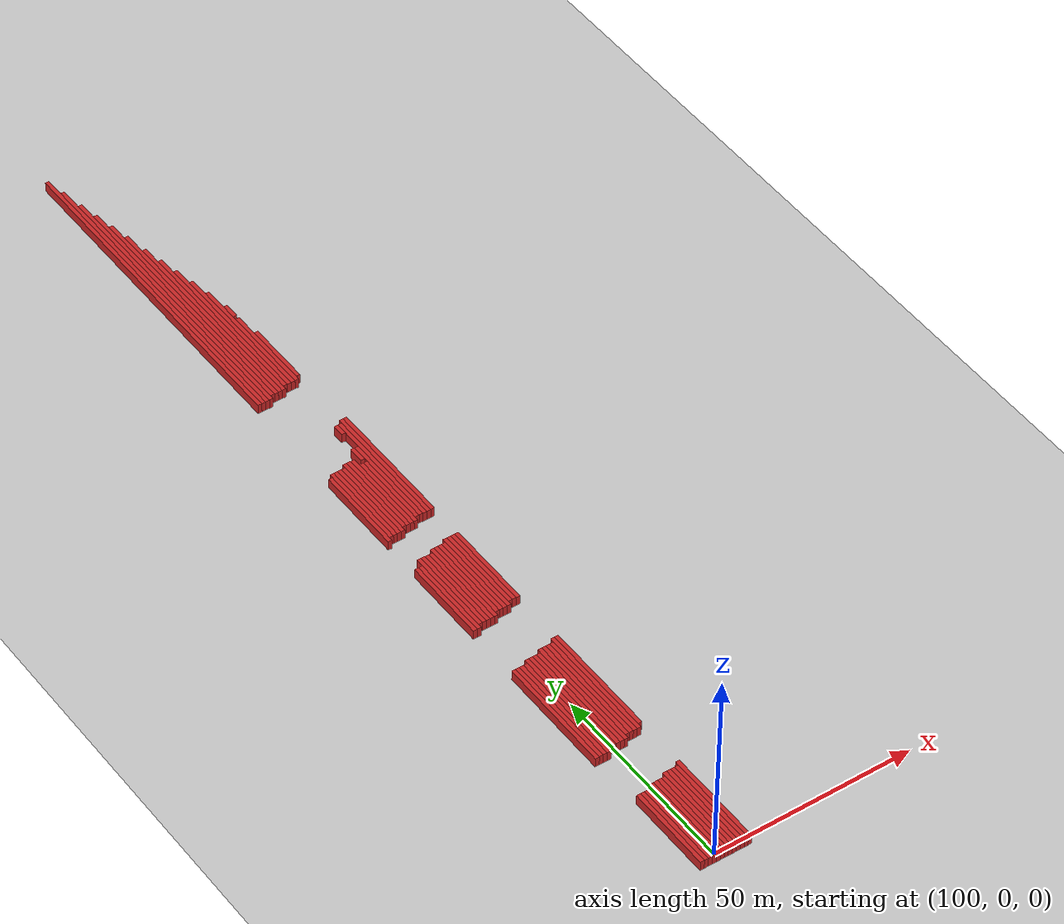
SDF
<sdf version="1.4">
 <world name="1_wall">
  <model name="ground_plane">
   <static>1</static>
   <link name="link">
    <collision name="collision">
     <geometry><plane><normal>0 0 1</normal><size>1000 1000</size></plane></geometry>
     <surface><friction><ode><mu>100</mu><mu2>50</mu2></ode></friction></surface>
    </collision>
    <visual name="visual">
     <cast_shadows>0</cast_shadows>
     <geometry><plane><normal>0 0 1</normal><size>10000 10000</size></plane></geometry>
     <material>
      <script><uri>file://media/materials/scripts/gazebo.material</uri><name>Gazebo/Grey</name></script>
     </material>
    </visual>
    <velocity_decay><linear>0</linear><angular>0</angular></velocity_decay>
   </link>
  </model>
  <model name="Wall_285">
   <static>1</static>
   <link name="Wall_285">
    <collision name="Wall_Collision_285">
     <geometry><box><size>30.0 1.0 2.5</size></box></geometry>
     <pose>0 0 1.25 0 -0 0</pose>
    </collision>
    <visual name="Wall_Visual_285">
     <pose>0 0 1.25 0 -0 0</pose>
     <geometry><box><size>30.0 1.0 2.5</size></box></geometry>
     <material>
      <script><uri>file://media/materials/scripts/gazebo.material</uri><name>Gazebo/Red</name></script>
     </material>
    </visual>
    <velocity_decay><linear>0</linear><angular>0</angular></velocity_decay>
    <pose>94.5 48.0 0 0 0 1.5707963267948966</pose>
   </link>
  </model>
  <model name="Wall_286">
   <static>1</static>
   <link name="Wall_286">
    <collision name="Wall_Collision_286">
     <geometry><box><size>22.0 1.0 2.5</size></box></geometry>
     <pose>0 0 1.25 0 -0 0</pose>
    </collision>
    <visual name="Wall_Visual_286">
     <pose>0 0 1.25 0 -0 0</pose>
     <geometry><box><size>22.0 1.0 2.5</size></box></geometry>
     <material>
      <script><uri>file://media/materials/scripts/gazebo.material</uri><name>Gazebo/Red</name></script>
     </material>
    </visual>
    <velocity_decay><linear>0</linear><angular>0</angular></velocity_decay>
    <pose>94.5 88.0 0 0 0 1.5707963267948966</pose>
   </link>
  </model>
  <model name="Wall_287">
   <static>1</static>
   <link name="Wall_287">
    <collision name="Wall_Collision_287">
     <geometry><box><size>23.0 1.0 2.5</size></box></geometry>
     <pose>0 0 1.25 0 -0 0</pose>
    </collision>
    <visual name="Wall_Visual_287">
     <pose>0 0 1.25 0 -0 0</pose>
     <geometry><box><size>23.0 1.0 2.5</size></box></geometry>
     <material>
      <script><uri>file://media/materials/scripts/gazebo.material</uri><name>Gazebo/Red</name></script>
     </material>
    </visual>
    <velocity_decay><linear>0</linear><angular>0</angular></velocity_decay>
    <pose>94.5 120.5 0 0 0 1.5707963267948966</pose>
   </link>
  </model>
  <model name="Wall_288">
   <static>1</static>
   <link name="Wall_288">
    <collision name="Wall_Collision_288">
     <geometry><box><size>89.0 1.0 2.5</size></box></geometry>
     <pose>0 0 1.25 0 -0 0</pose>
    </collision>
    <visual name="Wall_Visual_288">
     <pose>0 0 1.25 0 -0 0</pose>
     <geometry><box><size>89.0 1.0 2.5</size></box></geometry>
     <material>
      <script><uri>file://media/materials/scripts/gazebo.material</uri><name>Gazebo/Red</name></script>
     </material>
    </visual>
    <velocity_decay><linear>0</linear><angular>0</angular></velocity_decay>
    <pose>94.5 204.5 0 0 0 1.5707963267948966</pose>
   </link>
  </model>
  <model name="Wall_289">
   <static>1</static>
   <link name="Wall_289">
    <collision name="Wall_Collision_289">
     <geometry><box><size>22.0 1.0 2.5</size></box></geometry>
     <pose>0 0 1.25 0 -0 0</pose>
    </collision>
    <visual name="Wall_Visual_289">
     <pose>0 0 1.25 0 -0 0</pose>
     <geometry><box><size>22.0 1.0 2.5</size></box></geometry>
     <material>
      <script><uri>file://media/materials/scripts/gazebo.material</uri><name>Gazebo/Red</name></script>
     </material>
    </visual>
    <velocity_decay><linear>0</linear><angular>0</angular></velocity_decay>
    <pose>95.5 9.0 0 0 0 1.5707963267948966</pose>
   </link>
  </model>
  <model name="Wall_290">
   <static>1</static>
   <link name="Wall_290">
    <collision name="Wall_Collision_290">
     <geometry><box><size>30.0 1.0 2.5</size></box></geometry>
     <pose>0 0 1.25 0 -0 0</pose>
    </collision>
    <visual name="Wall_Visual_290">
     <pose>0 0 1.25 0 -0 0</pose>
     <geometry><box><size>30.0 1.0 2.5</size></box></geometry>
     <material>
      <script><uri>file://media/materials/scripts/gazebo.material</uri><name>Gazebo/Red</name></script>
     </material>
    </visual>
    <velocity_decay><linear>0</linear><angular>0</angular></velocity_decay>
    <pose>95.5 48.0 0 0 0 1.5707963267948966</pose>
   </link>
  </model>
  <model name="Wall_291">
   <static>1</static>
   <link name="Wall_291">
    <collision name="Wall_Collision_291">
     <geometry><box><size>22.0 1.0 2.5</size></box></geometry>
     <pose>0 0 1.25 0 -0 0</pose>
    </collision>
    <visual name="Wall_Visual_291">
     <pose>0 0 1.25 0 -0 0</pose>
     <geometry><box><size>22.0 1.0 2.5</size></box></geometry>
     <material>
      <script><uri>file://media/materials/scripts/gazebo.material</uri><name>Gazebo/Red</name></script>
     </material>
    </visual>
    <velocity_decay><linear>0</linear><angular>0</angular></velocity_decay>
    <pose>95.5 88.0 0 0 0 1.5707963267948966</pose>
   </link>
  </model>
  <model name="Wall_292">
   <static>1</static>
   <link name="Wall_292">
    <collision name="Wall_Collision_292">
     <geometry><box><size>23.0 1.0 2.5</size></box></geometry>
     <pose>0 0 1.25 0 -0 0</pose>
    </collision>
    <visual name="Wall_Visual_292">
     <pose>0 0 1.25 0 -0 0</pose>
     <geometry><box><size>23.0 1.0 2.5</size></box></geometry>
     <material>
      <script><uri>file://media/materials/scripts/gazebo.material</uri><name>Gazebo/Red</name></script>
     </material>
    </visual>
    <velocity_decay><linear>0</linear><angular>0</angular></velocity_decay>
    <pose>95.5 121.5 0 0 0 1.5707963267948966</pose>
   </link>
  </model>
  <model name="Wall_293">
   <static>1</static>
   <link name="Wall_293">
    <collision name="Wall_Collision_293">
     <geometry><box><size>84.0 1.0 2.5</size></box></geometry>
     <pose>0 0 1.25 0 -0 0</pose>
    </collision>
    <visual name="Wall_Visual_293">
     <pose>0 0 1.25 0 -0 0</pose>
     <geometry><box><size>84.0 1.0 2.5</size></box></geometry>
     <material>
      <script><uri>file://media/materials/scripts/gazebo.material</uri><name>Gazebo/Red</name></script>
     </material>
    </visual>
    <velocity_decay><linear>0</linear><angular>0</angular></velocity_decay>
    <pose>95.5 202.0 0 0 0 1.5707963267948966</pose>
   </link>
  </model>
  <model name="Wall_294">
   <static>1</static>
   <link name="Wall_294">
    <collision name="Wall_Collision_294">
     <geometry><box><size>22.0 1.0 2.5</size></box></geometry>
     <pose>0 0 1.25 0 -0 0</pose>
    </collision>
    <visual name="Wall_Visual_294">
     <pose>0 0 1.25 0 -0 0</pose>
     <geometry><box><size>22.0 1.0 2.5</size></box></geometry>
     <material>
      <script><uri>file://media/materials/scripts/gazebo.material</uri><name>Gazebo/Red</name></script>
     </material>
    </visual>
    <velocity_decay><linear>0</linear><angular>0</angular></velocity_decay>
    <pose>96.5 9.0 0 0 0 1.5707963267948966</pose>
   </link>
  </model>
  <model name="Wall_295">
   <static>1</static>
   <link name="Wall_295">
    <collision name="Wall_Collision_295">
     <geometry><box><size>30.0 1.0 2.5</size></box></geometry>
     <pose>0 0 1.25 0 -0 0</pose>
    </collision>
    <visual name="Wall_Visual_295">
     <pose>0 0 1.25 0 -0 0</pose>
     <geometry><box><size>30.0 1.0 2.5</size></box></geometry>
     <material>
      <script><uri>file://media/materials/scripts/gazebo.material</uri><name>Gazebo/Red</name></script>
     </material>
    </visual>
    <velocity_decay><linear>0</linear><angular>0</angular></velocity_decay>
    <pose>96.5 48.0 0 0 0 1.5707963267948966</pose>
   </link>
  </model>
  <model name="Wall_296">
   <static>1</static>
   <link name="Wall_296">
    <collision name="Wall_Collision_296">
     <geometry><box><size>23.0 1.0 2.5</size></box></geometry>
     <pose>0 0 1.25 0 -0 0</pose>
    </collision>
    <visual name="Wall_Visual_296">
     <pose>0 0 1.25 0 -0 0</pose>
     <geometry><box><size>23.0 1.0 2.5</size></box></geometry>
     <material>
      <script><uri>file://media/materials/scripts/gazebo.material</uri><name>Gazebo/Red</name></script>
     </material>
    </visual>
    <velocity_decay><linear>0</linear><angular>0</angular></velocity_decay>
    <pose>96.5 89.5 0 0 0 1.5707963267948966</pose>
   </link>
  </model>
  <model name="Wall_297">
   <static>1</static>
   <link name="Wall_297">
    <collision name="Wall_Collision_297">
     <geometry><box><size>23.0 1.0 2.5</size></box></geometry>
     <pose>0 0 1.25 0 -0 0</pose>
    </collision>
    <visual name="Wall_Visual_297">
     <pose>0 0 1.25 0 -0 0</pose>
     <geometry><box><size>23.0 1.0 2.5</size></box></geometry>
     <material>
      <script><uri>file://media/materials/scripts/gazebo.material</uri><name>Gazebo/Red</name></script>
     </material>
    </visual>
    <velocity_decay><linear>0</linear><angular>0</angular></velocity_decay>
    <pose>96.5 121.5 0 0 0 1.5707963267948966</pose>
   </link>
  </model>
  <model name="Wall_298">
   <static>1</static>
   <link name="Wall_298">
    <collision name="Wall_Collision_298">
     <geometry><box><size>78.0 1.0 2.5</size></box></geometry>
     <pose>0 0 1.25 0 -0 0</pose>
    </collision>
    <visual name="Wall_Visual_298">
     <pose>0 0 1.25 0 -0 0</pose>
     <geometry><box><size>78.0 1.0 2.5</size></box></geometry>
     <material>
      <script><uri>file://media/materials/scripts/gazebo.material</uri><name>Gazebo/Red</name></script>
     </material>
    </visual>
    <velocity_decay><linear>0</linear><angular>0</angular></velocity_decay>
    <pose>96.5 199.0 0 0 0 1.5707963267948966</pose>
   </link>
  </model>
  <model name="Wall_299">
   <static>1</static>
   <link name="Wall_299">
    <collision name="Wall_Collision_299">
     <geometry><box><size>22.0 1.0 2.5</size></box></geometry>
     <pose>0 0 1.25 0 -0 0</pose>
    </collision>
    <visual name="Wall_Visual_299">
     <pose>0 0 1.25 0 -0 0</pose>
     <geometry><box><size>22.0 1.0 2.5</size></box></geometry>
     <material>
      <script><uri>file://media/materials/scripts/gazebo.material</uri><name>Gazebo/Red</name></script>
     </material>
    </visual>
    <velocity_decay><linear>0</linear><angular>0</angular></velocity_decay>
    <pose>97.5 9.0 0 0 0 1.5707963267948966</pose>
   </link>
  </model>
  <model name="Wall_300">
   <static>1</static>
   <link name="Wall_300">
    <collision name="Wall_Collision_300">
     <geometry><box><size>30.0 1.0 2.5</size></box></geometry>
     <pose>0 0 1.25 0 -0 0</pose>
    </collision>
    <visual name="Wall_Visual_300">
     <pose>0 0 1.25 0 -0 0</pose>
     <geometry><box><size>30.0 1.0 2.5</size></box></geometry>
     <material>
      <script><uri>file://media/materials/scripts/gazebo.material</uri><name>Gazebo/Red</name></script>
     </material>
    </visual>
    <velocity_decay><linear>0</linear><angular>0</angular></velocity_decay>
    <pose>97.5 48.0 0 0 0 1.5707963267948966</pose>
   </link>
  </model>
  <model name="Wall_301">
   <static>1</static>
   <link name="Wall_301">
    <collision name="Wall_Collision_301">
     <geometry><box><size>23.0 1.0 2.5</size></box></geometry>
     <pose>0 0 1.25 0 -0 0</pose>
    </collision>
    <visual name="Wall_Visual_301">
     <pose>0 0 1.25 0 -0 0</pose>
     <geometry><box><size>23.0 1.0 2.5</size></box></geometry>
     <material>
      <script><uri>file://media/materials/scripts/gazebo.material</uri><name>Gazebo/Red</name></script>
     </material>
    </visual>
    <velocity_decay><linear>0</linear><angular>0</angular></velocity_decay>
    <pose>97.5 89.5 0 0 0 1.5707963267948966</pose>
   </link>
  </model>
  <model name="Wall_302">
   <static>1</static>
   <link name="Wall_302">
    <collision name="Wall_Collision_302">
     <geometry><box><size>23.0 1.0 2.5</size></box></geometry>
     <pose>0 0 1.25 0 -0 0</pose>
    </collision>
    <visual name="Wall_Visual_302">
     <pose>0 0 1.25 0 -0 0</pose>
     <geometry><box><size>23.0 1.0 2.5</size></box></geometry>
     <material>
      <script><uri>file://media/materials/scripts/gazebo.material</uri><name>Gazebo/Red</name></script>
     </material>
    </visual>
    <velocity_decay><linear>0</linear><angular>0</angular></velocity_decay>
    <pose>97.5 121.5 0 0 0 1.5707963267948966</pose>
   </link>
  </model>
  <model name="Wall_303">
   <static>1</static>
   <link name="Wall_303">
    <collision name="Wall_Collision_303">
     <geometry><box><size>73.0 1.0 2.5</size></box></geometry>
     <pose>0 0 1.25 0 -0 0</pose>
    </collision>
    <visual name="Wall_Visual_303">
     <pose>0 0 1.25 0 -0 0</pose>
     <geometry><box><size>73.0 1.0 2.5</size></box></geometry>
     <material>
      <script><uri>file://media/materials/scripts/gazebo.material</uri><name>Gazebo/Red</name></script>
     </material>
    </visual>
    <velocity_decay><linear>0</linear><angular>0</angular></velocity_decay>
    <pose>97.5 196.5 0 0 0 1.5707963267948966</pose>
   </link>
  </model>
  <model name="Wall_304">
   <static>1</static>
   <link name="Wall_304">
    <collision name="Wall_Collision_304">
     <geometry><box><size>22.0 1.0 2.5</size></box></geometry>
     <pose>0 0 1.25 0 -0 0</pose>
    </collision>
    <visual name="Wall_Visual_304">
     <pose>0 0 1.25 0 -0 0</pose>
     <geometry><box><size>22.0 1.0 2.5</size></box></geometry>
     <material>
      <script><uri>file://media/materials/scripts/gazebo.material</uri><name>Gazebo/Red</name></script>
     </material>
    </visual>
    <velocity_decay><linear>0</linear><angular>0</angular></velocity_decay>
    <pose>98.5 9.0 0 0 0 1.5707963267948966</pose>
   </link>
  </model>
  <model name="Wall_305">
   <static>1</static>
   <link name="Wall_305">
    <collision name="Wall_Collision_305">
     <geometry><box><size>30.0 1.0 2.5</size></box></geometry>
     <pose>0 0 1.25 0 -0 0</pose>
    </collision>
    <visual name="Wall_Visual_305">
     <pose>0 0 1.25 0 -0 0</pose>
     <geometry><box><size>30.0 1.0 2.5</size></box></geometry>
     <material>
      <script><uri>file://media/materials/scripts/gazebo.material</uri><name>Gazebo/Red</name></script>
     </material>
    </visual>
    <velocity_decay><linear>0</linear><angular>0</angular></velocity_decay>
    <pose>98.5 49.0 0 0 0 1.5707963267948966</pose>
   </link>
  </model>
  <model name="Wall_306">
   <static>1</static>
   <link name="Wall_306">
    <collision name="Wall_Collision_306">
     <geometry><box><size>23.0 1.0 2.5</size></box></geometry>
     <pose>0 0 1.25 0 -0 0</pose>
    </collision>
    <visual name="Wall_Visual_306">
     <pose>0 0 1.25 0 -0 0</pose>
     <geometry><box><size>23.0 1.0 2.5</size></box></geometry>
     <material>
      <script><uri>file://media/materials/scripts/gazebo.material</uri><name>Gazebo/Red</name></script>
     </material>
    </visual>
    <velocity_decay><linear>0</linear><angular>0</angular></velocity_decay>
    <pose>98.5 89.5 0 0 0 1.5707963267948966</pose>
   </link>
  </model>
  <model name="Wall_307">
   <static>1</static>
   <link name="Wall_307">
    <collision name="Wall_Collision_307">
     <geometry><box><size>23.0 1.0 2.5</size></box></geometry>
     <pose>0 0 1.25 0 -0 0</pose>
    </collision>
    <visual name="Wall_Visual_307">
     <pose>0 0 1.25 0 -0 0</pose>
     <geometry><box><size>23.0 1.0 2.5</size></box></geometry>
     <material>
      <script><uri>file://media/materials/scripts/gazebo.material</uri><name>Gazebo/Red</name></script>
     </material>
    </visual>
    <velocity_decay><linear>0</linear><angular>0</angular></velocity_decay>
    <pose>98.5 121.5 0 0 0 1.5707963267948966</pose>
   </link>
  </model>
  <model name="Wall_308">
   <static>1</static>
   <link name="Wall_308">
    <collision name="Wall_Collision_308">
     <geometry><box><size>67.0 1.0 2.5</size></box></geometry>
     <pose>0 0 1.25 0 -0 0</pose>
    </collision>
    <visual name="Wall_Visual_308">
     <pose>0 0 1.25 0 -0 0</pose>
     <geometry><box><size>67.0 1.0 2.5</size></box></geometry>
     <material>
      <script><uri>file://media/materials/scripts/gazebo.material</uri><name>Gazebo/Red</name></script>
     </material>
    </visual>
    <velocity_decay><linear>0</linear><angular>0</angular></velocity_decay>
    <pose>98.5 194.5 0 0 0 1.5707963267948966</pose>
   </link>
  </model>
  <model name="Wall_309">
   <static>1</static>
   <link name="Wall_309">
    <collision name="Wall_Collision_309">
     <geometry><box><size>23.0 1.0 2.5</size></box></geometry>
     <pose>0 0 1.25 0 -0 0</pose>
    </collision>
    <visual name="Wall_Visual_309">
     <pose>0 0 1.25 0 -0 0</pose>
     <geometry><box><size>23.0 1.0 2.5</size></box></geometry>
     <material>
      <script><uri>file://media/materials/scripts/gazebo.material</uri><name>Gazebo/Red</name></script>
     </material>
    </visual>
    <velocity_decay><linear>0</linear><angular>0</angular></velocity_decay>
    <pose>99.5 9.5 0 0 0 1.5707963267948966</pose>
   </link>
  </model>
  <model name="Wall_310">
   <static>1</static>
   <link name="Wall_310">
    <collision name="Wall_Collision_310">
     <geometry><box><size>30.0 1.0 2.5</size></box></geometry>
     <pose>0 0 1.25 0 -0 0</pose>
    </collision>
    <visual name="Wall_Visual_310">
     <pose>0 0 1.25 0 -0 0</pose>
     <geometry><box><size>30.0 1.0 2.5</size></box></geometry>
     <material>
      <script><uri>file://media/materials/scripts/gazebo.material</uri><name>Gazebo/Red</name></script>
     </material>
    </visual>
    <velocity_decay><linear>0</linear><angular>0</angular></velocity_decay>
    <pose>99.5 49.0 0 0 0 1.5707963267948966</pose>
   </link>
  </model>
  <model name="Wall_311">
   <static>1</static>
   <link name="Wall_311">
    <collision name="Wall_Collision_311">
     <geometry><box><size>23.0 1.0 2.5</size></box></geometry>
     <pose>0 0 1.25 0 -0 0</pose>
    </collision>
    <visual name="Wall_Visual_311">
     <pose>0 0 1.25 0 -0 0</pose>
     <geometry><box><size>23.0 1.0 2.5</size></box></geometry>
     <material>
      <script><uri>file://media/materials/scripts/gazebo.material</uri><name>Gazebo/Red</name></script>
     </material>
    </visual>
    <velocity_decay><linear>0</linear><angular>0</angular></velocity_decay>
    <pose>99.5 89.5 0 0 0 1.5707963267948966</pose>
   </link>
  </model>
  <model name="Wall_312">
   <static>1</static>
   <link name="Wall_312">
    <collision name="Wall_Collision_312">
     <geometry><box><size>23.0 1.0 2.5</size></box></geometry>
     <pose>0 0 1.25 0 -0 0</pose>
    </collision>
    <visual name="Wall_Visual_312">
     <pose>0 0 1.25 0 -0 0</pose>
     <geometry><box><size>23.0 1.0 2.5</size></box></geometry>
     <material>
      <script><uri>file://media/materials/scripts/gazebo.material</uri><name>Gazebo/Red</name></script>
     </material>
    </visual>
    <velocity_decay><linear>0</linear><angular>0</angular></velocity_decay>
    <pose>99.5 122.5 0 0 0 1.5707963267948966</pose>
   </link>
  </model>
  <model name="Wall_313">
   <static>1</static>
   <link name="Wall_313">
    <collision name="Wall_Collision_313">
     <geometry><box><size>62.0 1.0 2.5</size></box></geometry>
     <pose>0 0 1.25 0 -0 0</pose>
    </collision>
    <visual name="Wall_Visual_313">
     <pose>0 0 1.25 0 -0 0</pose>
     <geometry><box><size>62.0 1.0 2.5</size></box></geometry>
     <material>
      <script><uri>file://media/materials/scripts/gazebo.material</uri><name>Gazebo/Red</name></script>
     </material>
    </visual>
    <velocity_decay><linear>0</linear><angular>0</angular></velocity_decay>
    <pose>99.5 192.0 0 0 0 1.5707963267948966</pose>
   </link>
  </model>
  <model name="Wall_314">
   <static>1</static>
   <link name="Wall_314">
    <collision name="Wall_Collision_314">
     <geometry><box><size>23.0 1.0 2.5</size></box></geometry>
     <pose>0 0 1.25 0 -0 0</pose>
    </collision>
    <visual name="Wall_Visual_314">
     <pose>0 0 1.25 0 -0 0</pose>
     <geometry><box><size>23.0 1.0 2.5</size></box></geometry>
     <material>
      <script><uri>file://media/materials/scripts/gazebo.material</uri><name>Gazebo/Red</name></script>
     </material>
    </visual>
    <velocity_decay><linear>0</linear><angular>0</angular></velocity_decay>
    <pose>100.5 9.5 0 0 0 1.5707963267948966</pose>
   </link>
  </model>
  <model name="Wall_315">
   <static>1</static>
   <link name="Wall_315">
    <collision name="Wall_Collision_315">
     <geometry><box><size>30.0 1.0 2.5</size></box></geometry>
     <pose>0 0 1.25 0 -0 0</pose>
    </collision>
    <visual name="Wall_Visual_315">
     <pose>0 0 1.25 0 -0 0</pose>
     <geometry><box><size>30.0 1.0 2.5</size></box></geometry>
     <material>
      <script><uri>file://media/materials/scripts/gazebo.material</uri><name>Gazebo/Red</name></script>
     </material>
    </visual>
    <velocity_decay><linear>0</linear><angular>0</angular></velocity_decay>
    <pose>100.5 49.0 0 0 0 1.5707963267948966</pose>
   </link>
  </model>
  <model name="Wall_316">
   <static>1</static>
   <link name="Wall_316">
    <collision name="Wall_Collision_316">
     <geometry><box><size>24.0 1.0 2.5</size></box></geometry>
     <pose>0 0 1.25 0 -0 0</pose>
    </collision>
    <visual name="Wall_Visual_316">
     <pose>0 0 1.25 0 -0 0</pose>
     <geometry><box><size>24.0 1.0 2.5</size></box></geometry>
     <material>
      <script><uri>file://media/materials/scripts/gazebo.material</uri><name>Gazebo/Red</name></script>
     </material>
    </visual>
    <velocity_decay><linear>0</linear><angular>0</angular></velocity_decay>
    <pose>100.5 90.0 0 0 0 1.5707963267948966</pose>
   </link>
  </model>
  <model name="Wall_317">
   <static>1</static>
   <link name="Wall_317">
    <collision name="Wall_Collision_317">
     <geometry><box><size>23.0 1.0 2.5</size></box></geometry>
     <pose>0 0 1.25 0 -0 0</pose>
    </collision>
    <visual name="Wall_Visual_317">
     <pose>0 0 1.25 0 -0 0</pose>
     <geometry><box><size>23.0 1.0 2.5</size></box></geometry>
     <material>
      <script><uri>file://media/materials/scripts/gazebo.material</uri><name>Gazebo/Red</name></script>
     </material>
    </visual>
    <velocity_decay><linear>0</linear><angular>0</angular></velocity_decay>
    <pose>100.5 122.5 0 0 0 1.5707963267948966</pose>
   </link>
  </model>
  <model name="Wall_318">
   <static>1</static>
   <link name="Wall_318">
    <collision name="Wall_Collision_318">
     <geometry><box><size>56.0 1.0 2.5</size></box></geometry>
     <pose>0 0 1.25 0 -0 0</pose>
    </collision>
    <visual name="Wall_Visual_318">
     <pose>0 0 1.25 0 -0 0</pose>
     <geometry><box><size>56.0 1.0 2.5</size></box></geometry>
     <material>
      <script><uri>file://media/materials/scripts/gazebo.material</uri><name>Gazebo/Red</name></script>
     </material>
    </visual>
    <velocity_decay><linear>0</linear><angular>0</angular></velocity_decay>
    <pose>100.5 189.0 0 0 0 1.5707963267948966</pose>
   </link>
  </model>
  <model name="Wall_319">
   <static>1</static>
   <link name="Wall_319">
    <collision name="Wall_Collision_319">
     <geometry><box><size>23.0 1.0 2.5</size></box></geometry>
     <pose>0 0 1.25 0 -0 0</pose>
    </collision>
    <visual name="Wall_Visual_319">
     <pose>0 0 1.25 0 -0 0</pose>
     <geometry><box><size>23.0 1.0 2.5</size></box></geometry>
     <material>
      <script><uri>file://media/materials/scripts/gazebo.material</uri><name>Gazebo/Red</name></script>
     </material>
    </visual>
    <velocity_decay><linear>0</linear><angular>0</angular></velocity_decay>
    <pose>101.5 9.5 0 0 0 1.5707963267948966</pose>
   </link>
  </model>
  <model name="Wall_320">
   <static>1</static>
   <link name="Wall_320">
    <collision name="Wall_Collision_320">
     <geometry><box><size>30.0 1.0 2.5</size></box></geometry>
     <pose>0 0 1.25 0 -0 0</pose>
    </collision>
    <visual name="Wall_Visual_320">
     <pose>0 0 1.25 0 -0 0</pose>
     <geometry><box><size>30.0 1.0 2.5</size></box></geometry>
     <material>
      <script><uri>file://media/materials/scripts/gazebo.material</uri><name>Gazebo/Red</name></script>
     </material>
    </visual>
    <velocity_decay><linear>0</linear><angular>0</angular></velocity_decay>
    <pose>101.5 49.0 0 0 0 1.5707963267948966</pose>
   </link>
  </model>
  <model name="Wall_321">
   <static>1</static>
   <link name="Wall_321">
    <collision name="Wall_Collision_321">
     <geometry><box><size>23.0 1.0 2.5</size></box></geometry>
     <pose>0 0 1.25 0 -0 0</pose>
    </collision>
    <visual name="Wall_Visual_321">
     <pose>0 0 1.25 0 -0 0</pose>
     <geometry><box><size>23.0 1.0 2.5</size></box></geometry>
     <material>
      <script><uri>file://media/materials/scripts/gazebo.material</uri><name>Gazebo/Red</name></script>
     </material>
    </visual>
    <velocity_decay><linear>0</linear><angular>0</angular></velocity_decay>
    <pose>101.5 90.5 0 0 0 1.5707963267948966</pose>
   </link>
  </model>
  <model name="Wall_322">
   <static>1</static>
   <link name="Wall_322">
    <collision name="Wall_Collision_322">
     <geometry><box><size>23.0 1.0 2.5</size></box></geometry>
     <pose>0 0 1.25 0 -0 0</pose>
    </collision>
    <visual name="Wall_Visual_322">
     <pose>0 0 1.25 0 -0 0</pose>
     <geometry><box><size>23.0 1.0 2.5</size></box></geometry>
     <material>
      <script><uri>file://media/materials/scripts/gazebo.material</uri><name>Gazebo/Red</name></script>
     </material>
    </visual>
    <velocity_decay><linear>0</linear><angular>0</angular></velocity_decay>
    <pose>101.5 122.5 0 0 0 1.5707963267948966</pose>
   </link>
  </model>
  <model name="Wall_323">
   <static>1</static>
   <link name="Wall_323">
    <collision name="Wall_Collision_323">
     <geometry><box><size>51.0 1.0 2.5</size></box></geometry>
     <pose>0 0 1.25 0 -0 0</pose>
    </collision>
    <visual name="Wall_Visual_323">
     <pose>0 0 1.25 0 -0 0</pose>
     <geometry><box><size>51.0 1.0 2.5</size></box></geometry>
     <material>
      <script><uri>file://media/materials/scripts/gazebo.material</uri><name>Gazebo/Red</name></script>
     </material>
    </visual>
    <velocity_decay><linear>0</linear><angular>0</angular></velocity_decay>
    <pose>101.5 186.5 0 0 0 1.5707963267948966</pose>
   </link>
  </model>
  <model name="Wall_324">
   <static>1</static>
   <link name="Wall_324">
    <collision name="Wall_Collision_324">
     <geometry><box><size>23.0 1.0 2.5</size></box></geometry>
     <pose>0 0 1.25 0 -0 0</pose>
    </collision>
    <visual name="Wall_Visual_324">
     <pose>0 0 1.25 0 -0 0</pose>
     <geometry><box><size>23.0 1.0 2.5</size></box></geometry>
     <material>
      <script><uri>file://media/materials/scripts/gazebo.material</uri><name>Gazebo/Red</name></script>
     </material>
    </visual>
    <velocity_decay><linear>0</linear><angular>0</angular></velocity_decay>
    <pose>102.5 9.5 0 0 0 1.5707963267948966</pose>
   </link>
  </model>
  <model name="Wall_325">
   <static>1</static>
   <link name="Wall_325">
    <collision name="Wall_Collision_325">
     <geometry><box><size>31.0 1.0 2.5</size></box></geometry>
     <pose>0 0 1.25 0 -0 0</pose>
    </collision>
    <visual name="Wall_Visual_325">
     <pose>0 0 1.25 0 -0 0</pose>
     <geometry><box><size>31.0 1.0 2.5</size></box></geometry>
     <material>
      <script><uri>file://media/materials/scripts/gazebo.material</uri><name>Gazebo/Red</name></script>
     </material>
    </visual>
    <velocity_decay><linear>0</linear><angular>0</angular></velocity_decay>
    <pose>102.5 49.5 0 0 0 1.5707963267948966</pose>
   </link>
  </model>
  <model name="Wall_326">
   <static>1</static>
   <link name="Wall_326">
    <collision name="Wall_Collision_326">
     <geometry><box><size>23.0 1.0 2.5</size></box></geometry>
     <pose>0 0 1.25 0 -0 0</pose>
    </collision>
    <visual name="Wall_Visual_326">
     <pose>0 0 1.25 0 -0 0</pose>
     <geometry><box><size>23.0 1.0 2.5</size></box></geometry>
     <material>
      <script><uri>file://media/materials/scripts/gazebo.material</uri><name>Gazebo/Red</name></script>
     </material>
    </visual>
    <velocity_decay><linear>0</linear><angular>0</angular></velocity_decay>
    <pose>102.5 90.5 0 0 0 1.5707963267948966</pose>
   </link>
  </model>
  <model name="Wall_327">
   <static>1</static>
   <link name="Wall_327">
    <collision name="Wall_Collision_327">
     <geometry><box><size>21.0 1.0 2.5</size></box></geometry>
     <pose>0 0 1.25 0 -0 0</pose>
    </collision>
    <visual name="Wall_Visual_327">
     <pose>0 0 1.25 0 -0 0</pose>
     <geometry><box><size>21.0 1.0 2.5</size></box></geometry>
     <material>
      <script><uri>file://media/materials/scripts/gazebo.material</uri><name>Gazebo/Red</name></script>
     </material>
    </visual>
    <velocity_decay><linear>0</linear><angular>0</angular></velocity_decay>
    <pose>102.5 121.5 0 0 0 1.5707963267948966</pose>
   </link>
  </model>
  <model name="Wall_328">
   <static>1</static>
   <link name="Wall_328">
    <collision name="Wall_Collision_328">
     <geometry><box><size>45.0 1.0 2.5</size></box></geometry>
     <pose>0 0 1.25 0 -0 0</pose>
    </collision>
    <visual name="Wall_Visual_328">
     <pose>0 0 1.25 0 -0 0</pose>
     <geometry><box><size>45.0 1.0 2.5</size></box></geometry>
     <material>
      <script><uri>file://media/materials/scripts/gazebo.material</uri><name>Gazebo/Red</name></script>
     </material>
    </visual>
    <velocity_decay><linear>0</linear><angular>0</angular></velocity_decay>
    <pose>102.5 184.5 0 0 0 1.5707963267948966</pose>
   </link>
  </model>
  <model name="Wall_329">
   <static>1</static>
   <link name="Wall_329">
    <collision name="Wall_Collision_329">
     <geometry><box><size>24.0 1.0 2.5</size></box></geometry>
     <pose>0 0 1.25 0 -0 0</pose>
    </collision>
    <visual name="Wall_Visual_329">
     <pose>0 0 1.25 0 -0 0</pose>
     <geometry><box><size>24.0 1.0 2.5</size></box></geometry>
     <material>
      <script><uri>file://media/materials/scripts/gazebo.material</uri><name>Gazebo/Red</name></script>
     </material>
    </visual>
    <velocity_decay><linear>0</linear><angular>0</angular></velocity_decay>
    <pose>103.5 10.0 0 0 0 1.5707963267948966</pose>
   </link>
  </model>
  <model name="Wall_330">
   <static>1</static>
   <link name="Wall_330">
    <collision name="Wall_Collision_330">
     <geometry><box><size>30.0 1.0 2.5</size></box></geometry>
     <pose>0 0 1.25 0 -0 0</pose>
    </collision>
    <visual name="Wall_Visual_330">
     <pose>0 0 1.25 0 -0 0</pose>
     <geometry><box><size>30.0 1.0 2.5</size></box></geometry>
     <material>
      <script><uri>file://media/materials/scripts/gazebo.material</uri><name>Gazebo/Red</name></script>
     </material>
    </visual>
    <velocity_decay><linear>0</linear><angular>0</angular></velocity_decay>
    <pose>103.5 50.0 0 0 0 1.5707963267948966</pose>
   </link>
  </model>
  <model name="Wall_331">
   <static>1</static>
   <link name="Wall_331">
    <collision name="Wall_Collision_331">
     <geometry><box><size>23.0 1.0 2.5</size></box></geometry>
     <pose>0 0 1.25 0 -0 0</pose>
    </collision>
    <visual name="Wall_Visual_331">
     <pose>0 0 1.25 0 -0 0</pose>
     <geometry><box><size>23.0 1.0 2.5</size></box></geometry>
     <material>
      <script><uri>file://media/materials/scripts/gazebo.material</uri><name>Gazebo/Red</name></script>
     </material>
    </visual>
    <velocity_decay><linear>0</linear><angular>0</angular></velocity_decay>
    <pose>103.5 90.5 0 0 0 1.5707963267948966</pose>
   </link>
  </model>
  <model name="Wall_332">
   <static>1</static>
   <link name="Wall_332">
    <collision name="Wall_Collision_332">
     <geometry><box><size>20.0 1.0 2.5</size></box></geometry>
     <pose>0 0 1.25 0 -0 0</pose>
    </collision>
    <visual name="Wall_Visual_332">
     <pose>0 0 1.25 0 -0 0</pose>
     <geometry><box><size>20.0 1.0 2.5</size></box></geometry>
     <material>
      <script><uri>file://media/materials/scripts/gazebo.material</uri><name>Gazebo/Red</name></script>
     </material>
    </visual>
    <velocity_decay><linear>0</linear><angular>0</angular></velocity_decay>
    <pose>103.5 122.0 0 0 0 1.5707963267948966</pose>
   </link>
  </model>
  <model name="Wall_333">
   <static>1</static>
   <link name="Wall_333">
    <collision name="Wall_Collision_333">
     <geometry><box><size>4.0 1.0 2.5</size></box></geometry>
     <pose>0 0 1.25 0 -0 0</pose>
    </collision>
    <visual name="Wall_Visual_333">
     <pose>0 0 1.25 0 -0 0</pose>
     <geometry><box><size>4.0 1.0 2.5</size></box></geometry>
     <material>
      <script><uri>file://media/materials/scripts/gazebo.material</uri><name>Gazebo/Red</name></script>
     </material>
    </visual>
    <velocity_decay><linear>0</linear><angular>0</angular></velocity_decay>
    <pose>103.5 135.0 0 0 0 1.5707963267948966</pose>
   </link>
  </model>
  <model name="Wall_334">
   <static>1</static>
   <link name="Wall_334">
    <collision name="Wall_Collision_334">
     <geometry><box><size>40.0 1.0 2.5</size></box></geometry>
     <pose>0 0 1.25 0 -0 0</pose>
    </collision>
    <visual name="Wall_Visual_334">
     <pose>0 0 1.25 0 -0 0</pose>
     <geometry><box><size>40.0 1.0 2.5</size></box></geometry>
     <material>
      <script><uri>file://media/materials/scripts/gazebo.material</uri><name>Gazebo/Red</name></script>
     </material>
    </visual>
    <velocity_decay><linear>0</linear><angular>0</angular></velocity_decay>
    <pose>103.5 182.0 0 0 0 1.5707963267948966</pose>
   </link>
  </model>
  <model name="Wall_335">
   <static>1</static>
   <link name="Wall_335">
    <collision name="Wall_Collision_335">
     <geometry><box><size>24.0 1.0 2.5</size></box></geometry>
     <pose>0 0 1.25 0 -0 0</pose>
    </collision>
    <visual name="Wall_Visual_335">
     <pose>0 0 1.25 0 -0 0</pose>
     <geometry><box><size>24.0 1.0 2.5</size></box></geometry>
     <material>
      <script><uri>file://media/materials/scripts/gazebo.material</uri><name>Gazebo/Red</name></script>
     </material>
    </visual>
    <velocity_decay><linear>0</linear><angular>0</angular></velocity_decay>
    <pose>104.5 10.0 0 0 0 1.5707963267948966</pose>
   </link>
  </model>
  <model name="Wall_336">
   <static>1</static>
   <link name="Wall_336">
    <collision name="Wall_Collision_336">
     <geometry><box><size>30.0 1.0 2.5</size></box></geometry>
     <pose>0 0 1.25 0 -0 0</pose>
    </collision>
    <visual name="Wall_Visual_336">
     <pose>0 0 1.25 0 -0 0</pose>
     <geometry><box><size>30.0 1.0 2.5</size></box></geometry>
     <material>
      <script><uri>file://media/materials/scripts/gazebo.material</uri><name>Gazebo/Red</name></script>
     </material>
    </visual>
    <velocity_decay><linear>0</linear><angular>0</angular></velocity_decay>
    <pose>104.5 50.0 0 0 0 1.5707963267948966</pose>
   </link>
  </model>
  <model name="Wall_337">
   <static>1</static>
   <link name="Wall_337">
    <collision name="Wall_Collision_337">
     <geometry><box><size>24.0 1.0 2.5</size></box></geometry>
     <pose>0 0 1.25 0 -0 0</pose>
    </collision>
    <visual name="Wall_Visual_337">
     <pose>0 0 1.25 0 -0 0</pose>
     <geometry><box><size>24.0 1.0 2.5</size></box></geometry>
     <material>
      <script><uri>file://media/materials/scripts/gazebo.material</uri><name>Gazebo/Red</name></script>
     </material>
    </visual>
    <velocity_decay><linear>0</linear><angular>0</angular></velocity_decay>
    <pose>104.5 91.0 0 0 0 1.5707963267948966</pose>
   </link>
  </model>
  <model name="Wall_338">
   <static>1</static>
   <link name="Wall_338">
    <collision name="Wall_Collision_338">
     <geometry><box><size>25.0 1.0 2.5</size></box></geometry>
     <pose>0 0 1.25 0 -0 0</pose>
    </collision>
    <visual name="Wall_Visual_338">
     <pose>0 0 1.25 0 -0 0</pose>
     <geometry><box><size>25.0 1.0 2.5</size></box></geometry>
     <material>
      <script><uri>file://media/materials/scripts/gazebo.material</uri><name>Gazebo/Red</name></script>
     </material>
    </visual>
    <velocity_decay><linear>0</linear><angular>0</angular></velocity_decay>
    <pose>104.5 124.5 0 0 0 1.5707963267948966</pose>
   </link>
  </model>
  <model name="Wall_339">
   <static>1</static>
   <link name="Wall_339">
    <collision name="Wall_Collision_339">
     <geometry><box><size>3.0 1.0 2.5</size></box></geometry>
     <pose>0 0 1.25 0 -0 0</pose>
    </collision>
    <visual name="Wall_Visual_339">
     <pose>0 0 1.25 0 -0 0</pose>
     <geometry><box><size>3.0 1.0 2.5</size></box></geometry>
     <material>
      <script><uri>file://media/materials/scripts/gazebo.material</uri><name>Gazebo/Red</name></script>
     </material>
    </visual>
    <velocity_decay><linear>0</linear><angular>0</angular></velocity_decay>
    <pose>104.5 143.5 0 0 0 1.5707963267948966</pose>
   </link>
  </model>
  <model name="Wall_340">
   <static>1</static>
   <link name="Wall_340">
    <collision name="Wall_Collision_340">
     <geometry><box><size>35.0 1.0 2.5</size></box></geometry>
     <pose>0 0 1.25 0 -0 0</pose>
    </collision>
    <visual name="Wall_Visual_340">
     <pose>0 0 1.25 0 -0 0</pose>
     <geometry><box><size>35.0 1.0 2.5</size></box></geometry>
     <material>
      <script><uri>file://media/materials/scripts/gazebo.material</uri><name>Gazebo/Red</name></script>
     </material>
    </visual>
    <velocity_decay><linear>0</linear><angular>0</angular></velocity_decay>
    <pose>104.5 179.5 0 0 0 1.5707963267948966</pose>
   </link>
  </model>
  <model name="Wall_341">
   <static>1</static>
   <link name="Wall_341">
    <collision name="Wall_Collision_341">
     <geometry><box><size>24.0 1.0 2.5</size></box></geometry>
     <pose>0 0 1.25 0 -0 0</pose>
    </collision>
    <visual name="Wall_Visual_341">
     <pose>0 0 1.25 0 -0 0</pose>
     <geometry><box><size>24.0 1.0 2.5</size></box></geometry>
     <material>
      <script><uri>file://media/materials/scripts/gazebo.material</uri><name>Gazebo/Red</name></script>
     </material>
    </visual>
    <velocity_decay><linear>0</linear><angular>0</angular></velocity_decay>
    <pose>105.5 10.0 0 0 0 1.5707963267948966</pose>
   </link>
  </model>
  <model name="Wall_342">
   <static>1</static>
   <link name="Wall_342">
    <collision name="Wall_Collision_342">
     <geometry><box><size>30.0 1.0 2.5</size></box></geometry>
     <pose>0 0 1.25 0 -0 0</pose>
    </collision>
    <visual name="Wall_Visual_342">
     <pose>0 0 1.25 0 -0 0</pose>
     <geometry><box><size>30.0 1.0 2.5</size></box></geometry>
     <material>
      <script><uri>file://media/materials/scripts/gazebo.material</uri><name>Gazebo/Red</name></script>
     </material>
    </visual>
    <velocity_decay><linear>0</linear><angular>0</angular></velocity_decay>
    <pose>105.5 50.0 0 0 0 1.5707963267948966</pose>
   </link>
  </model>
  <model name="Wall_343">
   <static>1</static>
   <link name="Wall_343">
    <collision name="Wall_Collision_343">
     <geometry><box><size>23.0 1.0 2.5</size></box></geometry>
     <pose>0 0 1.25 0 -0 0</pose>
    </collision>
    <visual name="Wall_Visual_343">
     <pose>0 0 1.25 0 -0 0</pose>
     <geometry><box><size>23.0 1.0 2.5</size></box></geometry>
     <material>
      <script><uri>file://media/materials/scripts/gazebo.material</uri><name>Gazebo/Red</name></script>
     </material>
    </visual>
    <velocity_decay><linear>0</linear><angular>0</angular></velocity_decay>
    <pose>105.5 91.5 0 0 0 1.5707963267948966</pose>
   </link>
  </model>
  <model name="Wall_344">
   <static>1</static>
   <link name="Wall_344">
    <collision name="Wall_Collision_344">
     <geometry><box><size>33.0 1.0 2.5</size></box></geometry>
     <pose>0 0 1.25 0 -0 0</pose>
    </collision>
    <visual name="Wall_Visual_344">
     <pose>0 0 1.25 0 -0 0</pose>
     <geometry><box><size>33.0 1.0 2.5</size></box></geometry>
     <material>
      <script><uri>file://media/materials/scripts/gazebo.material</uri><name>Gazebo/Red</name></script>
     </material>
    </visual>
    <velocity_decay><linear>0</linear><angular>0</angular></velocity_decay>
    <pose>105.5 128.5 0 0 0 1.5707963267948966</pose>
   </link>
  </model>
  <model name="Wall_345">
   <static>1</static>
   <link name="Wall_345">
    <collision name="Wall_Collision_345">
     <geometry><box><size>24.0 1.0 2.5</size></box></geometry>
     <pose>0 0 1.25 0 -0 0</pose>
    </collision>
    <visual name="Wall_Visual_345">
     <pose>0 0 1.25 0 -0 0</pose>
     <geometry><box><size>24.0 1.0 2.5</size></box></geometry>
     <material>
      <script><uri>file://media/materials/scripts/gazebo.material</uri><name>Gazebo/Red</name></script>
     </material>
    </visual>
    <velocity_decay><linear>0</linear><angular>0</angular></velocity_decay>
    <pose>105.5 174.0 0 0 0 1.5707963267948966</pose>
   </link>
  </model>
  <model name="Wall_346">
   <static>1</static>
   <link name="Wall_346">
    <collision name="Wall_Collision_346">
     <geometry><box><size>4.0 1.0 2.5</size></box></geometry>
     <pose>0 0 1.25 0 -0 0</pose>
    </collision>
    <visual name="Wall_Visual_346">
     <pose>0 0 1.25 0 -0 0</pose>
     <geometry><box><size>4.0 1.0 2.5</size></box></geometry>
     <material>
      <script><uri>file://media/materials/scripts/gazebo.material</uri><name>Gazebo/Red</name></script>
     </material>
    </visual>
    <velocity_decay><linear>0</linear><angular>0</angular></velocity_decay>
    <pose>105.5 189.0 0 0 0 1.5707963267948966</pose>
   </link>
  </model>
  <model name="Wall_347">
   <static>1</static>
   <link name="Wall_347">
    <collision name="Wall_Collision_347">
     <geometry><box><size>24.0 1.0 2.5</size></box></geometry>
     <pose>0 0 1.25 0 -0 0</pose>
    </collision>
    <visual name="Wall_Visual_347">
     <pose>0 0 1.25 0 -0 0</pose>
     <geometry><box><size>24.0 1.0 2.5</size></box></geometry>
     <material>
      <script><uri>file://media/materials/scripts/gazebo.material</uri><name>Gazebo/Red</name></script>
     </material>
    </visual>
    <velocity_decay><linear>0</linear><angular>0</angular></velocity_decay>
    <pose>106.5 10.0 0 0 0 1.5707963267948966</pose>
   </link>
  </model>
  <model name="Wall_348">
   <static>1</static>
   <link name="Wall_348">
    <collision name="Wall_Collision_348">
     <geometry><box><size>31.0 1.0 2.5</size></box></geometry>
     <pose>0 0 1.25 0 -0 0</pose>
    </collision>
    <visual name="Wall_Visual_348">
     <pose>0 0 1.25 0 -0 0</pose>
     <geometry><box><size>31.0 1.0 2.5</size></box></geometry>
     <material>
      <script><uri>file://media/materials/scripts/gazebo.material</uri><name>Gazebo/Red</name></script>
     </material>
    </visual>
    <velocity_decay><linear>0</linear><angular>0</angular></velocity_decay>
    <pose>106.5 50.5 0 0 0 1.5707963267948966</pose>
   </link>
  </model>
  <model name="Wall_349">
   <static>1</static>
   <link name="Wall_349">
    <collision name="Wall_Collision_349">
     <geometry><box><size>23.0 1.0 2.5</size></box></geometry>
     <pose>0 0 1.25 0 -0 0</pose>
    </collision>
    <visual name="Wall_Visual_349">
     <pose>0 0 1.25 0 -0 0</pose>
     <geometry><box><size>23.0 1.0 2.5</size></box></geometry>
     <material>
      <script><uri>file://media/materials/scripts/gazebo.material</uri><name>Gazebo/Red</name></script>
     </material>
    </visual>
    <velocity_decay><linear>0</linear><angular>0</angular></velocity_decay>
    <pose>106.5 91.5 0 0 0 1.5707963267948966</pose>
   </link>
  </model>
  <model name="Wall_350">
   <static>1</static>
   <link name="Wall_350">
    <collision name="Wall_Collision_350">
     <geometry><box><size>34.0 1.0 2.5</size></box></geometry>
     <pose>0 0 1.25 0 -0 0</pose>
    </collision>
    <visual name="Wall_Visual_350">
     <pose>0 0 1.25 0 -0 0</pose>
     <geometry><box><size>34.0 1.0 2.5</size></box></geometry>
     <material>
      <script><uri>file://media/materials/scripts/gazebo.material</uri><name>Gazebo/Red</name></script>
     </material>
    </visual>
    <velocity_decay><linear>0</linear><angular>0</angular></velocity_decay>
    <pose>106.5 129.0 0 0 0 1.5707963267948966</pose>
   </link>
  </model>
  <model name="Wall_351">
   <static>1</static>
   <link name="Wall_351">
    <collision name="Wall_Collision_351">
     <geometry><box><size>17.0 1.0 2.5</size></box></geometry>
     <pose>0 0 1.25 0 -0 0</pose>
    </collision>
    <visual name="Wall_Visual_351">
     <pose>0 0 1.25 0 -0 0</pose>
     <geometry><box><size>17.0 1.0 2.5</size></box></geometry>
     <material>
      <script><uri>file://media/materials/scripts/gazebo.material</uri><name>Gazebo/Red</name></script>
     </material>
    </visual>
    <velocity_decay><linear>0</linear><angular>0</angular></velocity_decay>
    <pose>106.5 171.5 0 0 0 1.5707963267948966</pose>
   </link>
  </model>
  <model name="Wall_352">
   <static>1</static>
   <link name="Wall_352">
    <collision name="Wall_Collision_352">
     <geometry><box><size>25.0 1.0 2.5</size></box></geometry>
     <pose>0 0 1.25 0 -0 0</pose>
    </collision>
    <visual name="Wall_Visual_352">
     <pose>0 0 1.25 0 -0 0</pose>
     <geometry><box><size>25.0 1.0 2.5</size></box></geometry>
     <material>
      <script><uri>file://media/materials/scripts/gazebo.material</uri><name>Gazebo/Red</name></script>
     </material>
    </visual>
    <velocity_decay><linear>0</linear><angular>0</angular></velocity_decay>
    <pose>107.5 10.5 0 0 0 1.5707963267948966</pose>
   </link>
  </model>
  <model name="Wall_353">
   <static>1</static>
   <link name="Wall_353">
    <collision name="Wall_Collision_353">
     <geometry><box><size>30.0 1.0 2.5</size></box></geometry>
     <pose>0 0 1.25 0 -0 0</pose>
    </collision>
    <visual name="Wall_Visual_353">
     <pose>0 0 1.25 0 -0 0</pose>
     <geometry><box><size>30.0 1.0 2.5</size></box></geometry>
     <material>
      <script><uri>file://media/materials/scripts/gazebo.material</uri><name>Gazebo/Red</name></script>
     </material>
    </visual>
    <velocity_decay><linear>0</linear><angular>0</angular></velocity_decay>
    <pose>107.5 51.0 0 0 0 1.5707963267948966</pose>
   </link>
  </model>
  <model name="Wall_354">
   <static>1</static>
   <link name="Wall_354">
    <collision name="Wall_Collision_354">
     <geometry><box><size>23.0 1.0 2.5</size></box></geometry>
     <pose>0 0 1.25 0 -0 0</pose>
    </collision>
    <visual name="Wall_Visual_354">
     <pose>0 0 1.25 0 -0 0</pose>
     <geometry><box><size>23.0 1.0 2.5</size></box></geometry>
     <material>
      <script><uri>file://media/materials/scripts/gazebo.material</uri><name>Gazebo/Red</name></script>
     </material>
    </visual>
    <velocity_decay><linear>0</linear><angular>0</angular></velocity_decay>
    <pose>107.5 91.5 0 0 0 1.5707963267948966</pose>
   </link>
  </model>
  <model name="Wall_355">
   <static>1</static>
   <link name="Wall_355">
    <collision name="Wall_Collision_355">
     <geometry><box><size>34.0 1.0 2.5</size></box></geometry>
     <pose>0 0 1.25 0 -0 0</pose>
    </collision>
    <visual name="Wall_Visual_355">
     <pose>0 0 1.25 0 -0 0</pose>
     <geometry><box><size>34.0 1.0 2.5</size></box></geometry>
     <material>
      <script><uri>file://media/materials/scripts/gazebo.material</uri><name>Gazebo/Red</name></script>
     </material>
    </visual>
    <velocity_decay><linear>0</linear><angular>0</angular></velocity_decay>
    <pose>107.5 129.0 0 0 0 1.5707963267948966</pose>
   </link>
  </model>
 </world>
</sdf>
